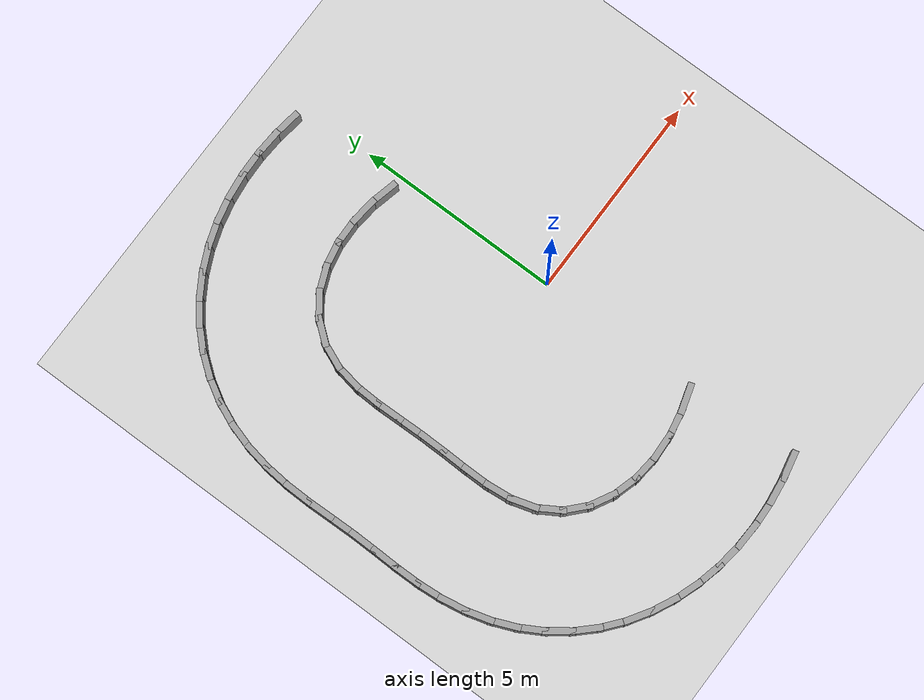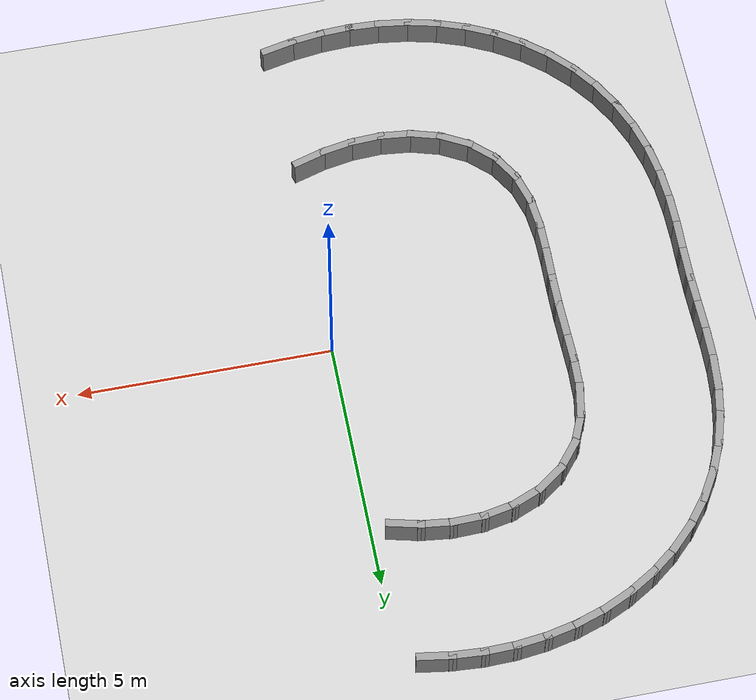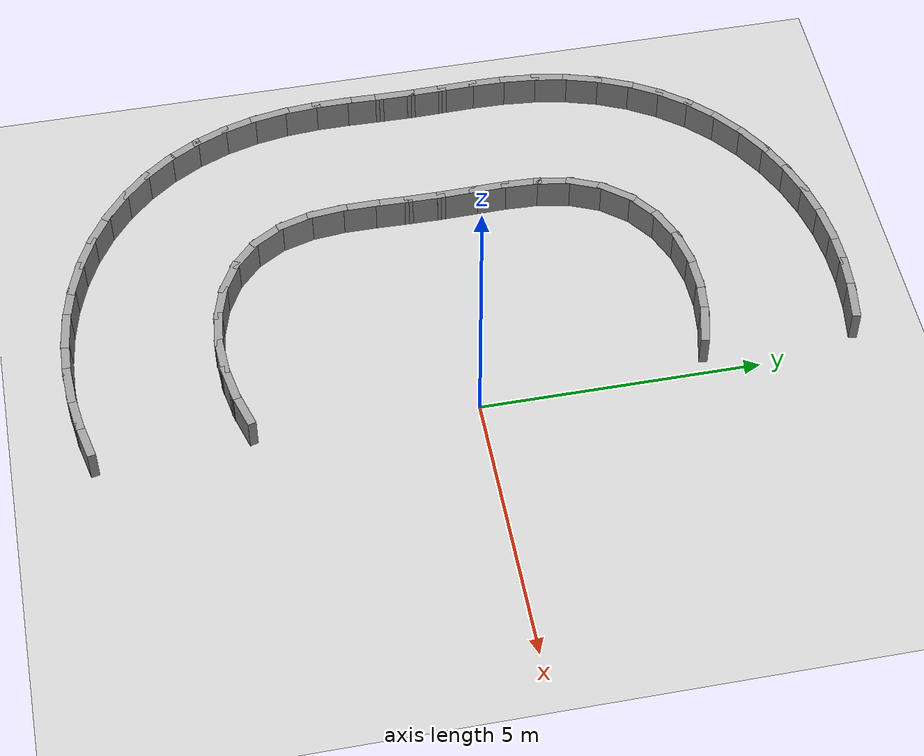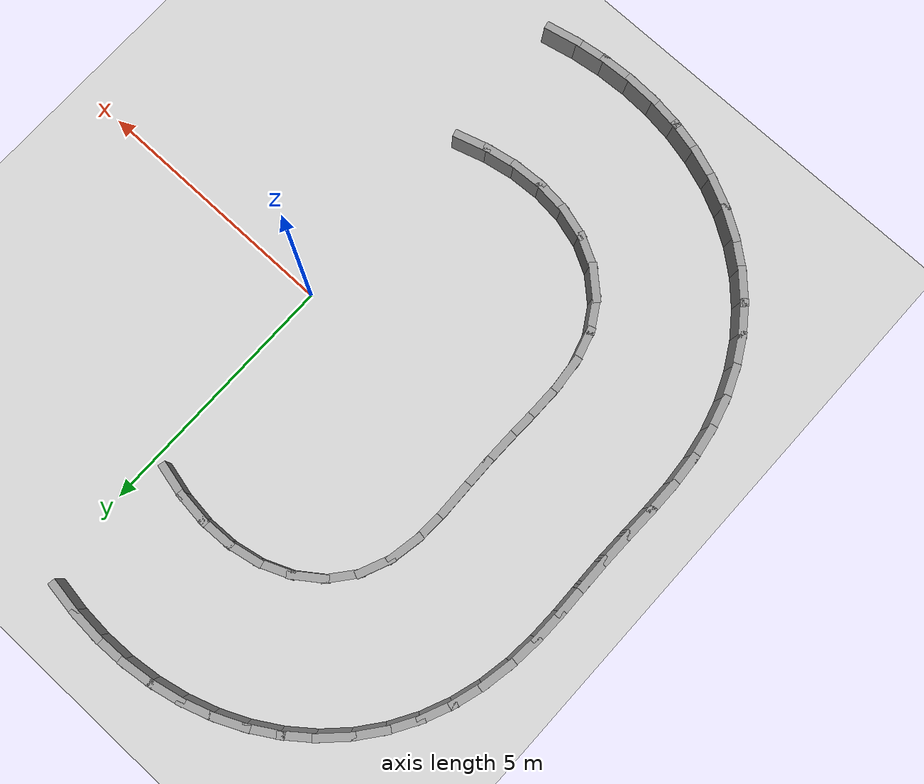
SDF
<sdf version="1.7">
 <world name="default">
  <model name="ground_plane">
   <static>1</static>
   <link name="link">
    <collision name="collision">
     <geometry><plane><normal>0 0 1</normal><size>100 100</size></plane></geometry>
     <surface><friction><ode><mu>100</mu><mu2>50</mu2></ode></friction></surface>
    </collision>
    <visual name="visual">
     <cast_shadows>0</cast_shadows>
     <geometry><plane><normal>0 0 1</normal><size>100 100</size></plane></geometry>
     <material>
      <script><uri>file://media/materials/scripts/gazebo.material</uri><name>Gazebo/Grey</name></script>
     </material>
    </visual>
   </link>
  </model>
  <model name="rand_lobed_01">
   <link name="Wall_13">
    <collision name="Wall_13_Collision">
     <geometry><box><size>0.7497 0.1500 0.6000</size></box></geometry>
     <pose>0 0 0.3000 0 -0 0</pose>
    </collision>
    <visual name="Wall_13_Visual">
     <pose>0 0 0.3000 0 -0 0</pose>
     <geometry><box><size>0.7497 0.1500 0.6000</size></box></geometry>
     <material>
      <script><uri>file://media/materials/scripts/gazebo.material</uri><name>Gazebo/Grey</name></script>
      <ambient>1 1 1 1</ambient>
     </material>
    </visual>
    <pose>-0.6195 4.1189 0 0 -0 2.90489</pose>
   </link>
   <link name="Wall_14">
    <collision name="Wall_14_Collision">
     <geometry><box><size>0.7496 0.1500 0.6000</size></box></geometry>
     <pose>0 0 0.3000 0 -0 0</pose>
    </collision>
    <visual name="Wall_14_Visual">
     <pose>0 0 0.3000 0 -0 0</pose>
     <geometry><box><size>0.7496 0.1500 0.6000</size></box></geometry>
     <material>
      <script><uri>file://media/materials/scripts/gazebo.material</uri><name>Gazebo/Grey</name></script>
      <ambient>1 1 1 1</ambient>
     </material>
    </visual>
    <pose>-1.2088 4.2235 0 0 -0 3.02691</pose>
   </link>
   <link name="Wall_15">
    <collision name="Wall_15_Collision">
     <geometry><box><size>0.7494 0.1500 0.6000</size></box></geometry>
     <pose>0 0 0.3000 0 -0 0</pose>
    </collision>
    <visual name="Wall_15_Visual">
     <pose>0 0 0.3000 0 -0 0</pose>
     <geometry><box><size>0.7494 0.1500 0.6000</size></box></geometry>
     <material>
      <script><uri>file://media/materials/scripts/gazebo.material</uri><name>Gazebo/Grey</name></script>
      <ambient>1 1 1 1</ambient>
     </material>
    </visual>
    <pose>-1.8062 4.2493 0 0 -0 -3.11310</pose>
   </link>
   <link name="Wall_16">
    <collision name="Wall_16_Collision">
     <geometry><box><size>0.7492 0.1500 0.6000</size></box></geometry>
     <pose>0 0 0.3000 0 -0 0</pose>
    </collision>
    <visual name="Wall_16_Visual">
     <pose>0 0 0.3000 0 -0 0</pose>
     <geometry><box><size>0.7492 0.1500 0.6000</size></box></geometry>
     <material>
      <script><uri>file://media/materials/scripts/gazebo.material</uri><name>Gazebo/Grey</name></script>
      <ambient>1 1 1 1</ambient>
     </material>
    </visual>
    <pose>-2.3997 4.1826 0 0 -0 -2.94653</pose>
   </link>
   <link name="Wall_17">
    <collision name="Wall_17_Collision">
     <geometry><box><size>0.7489 0.1500 0.6000</size></box></geometry>
     <pose>0 0 0.3000 0 -0 0</pose>
    </collision>
    <visual name="Wall_17_Visual">
     <pose>0 0 0.3000 0 -0 0</pose>
     <geometry><box><size>0.7489 0.1500 0.6000</size></box></geometry>
     <material>
      <script><uri>file://media/materials/scripts/gazebo.material</uri><name>Gazebo/Grey</name></script>
      <ambient>1 1 1 1</ambient>
     </material>
    </visual>
    <pose>-2.9705 4.0105 0 0 -0 -2.75075</pose>
   </link>
   <link name="Wall_18">
    <collision name="Wall_18_Collision">
     <geometry><box><size>0.7484 0.1500 0.6000</size></box></geometry>
     <pose>0 0 0.3000 0 -0 0</pose>
    </collision>
    <visual name="Wall_18_Visual">
     <pose>0 0 0.3000 0 -0 0</pose>
     <geometry><box><size>0.7484 0.1500 0.6000</size></box></geometry>
     <material>
      <script><uri>file://media/materials/scripts/gazebo.material</uri><name>Gazebo/Grey</name></script>
      <ambient>1 1 1 1</ambient>
     </material>
    </visual>
    <pose>-3.4902 3.7217 0 0 -0 -2.51799</pose>
   </link>
   <link name="Wall_19">
    <collision name="Wall_19_Collision">
     <geometry><box><size>0.7480 0.1500 0.6000</size></box></geometry>
     <pose>0 0 0.3000 0 -0 0</pose>
    </collision>
    <visual name="Wall_19_Visual">
     <pose>0 0 0.3000 0 -0 0</pose>
     <geometry><box><size>0.7480 0.1500 0.6000</size></box></geometry>
     <material>
      <script><uri>file://media/materials/scripts/gazebo.material</uri><name>Gazebo/Grey</name></script>
      <ambient>1 1 1 1</ambient>
     </material>
    </visual>
    <pose>-3.9207 3.3141 0 0 -0 -2.24880</pose>
   </link>
   <link name="Wall_20">
    <collision name="Wall_20_Collision">
     <geometry><box><size>0.7483 0.1500 0.6000</size></box></geometry>
     <pose>0 0 0.3000 0 -0 0</pose>
    </collision>
    <visual name="Wall_20_Visual">
     <pose>0 0 0.3000 0 -0 0</pose>
     <geometry><box><size>0.7483 0.1500 0.6000</size></box></geometry>
     <material>
      <script><uri>file://media/materials/scripts/gazebo.material</uri><name>Gazebo/Grey</name></script>
      <ambient>1 1 1 1</ambient>
     </material>
    </visual>
    <pose>-4.2255 2.8060 0 0 -0 -1.97364</pose>
   </link>
   <link name="Wall_21">
    <collision name="Wall_21_Collision">
     <geometry><box><size>0.7491 0.1500 0.6000</size></box></geometry>
     <pose>0 0 0.3000 0 -0 0</pose>
    </collision>
    <visual name="Wall_21_Visual">
     <pose>0 0 0.3000 0 -0 0</pose>
     <geometry><box><size>0.7491 0.1500 0.6000</size></box></geometry>
     <material>
      <script><uri>file://media/materials/scripts/gazebo.material</uri><name>Gazebo/Grey</name></script>
      <ambient>1 1 1 1</ambient>
     </material>
    </visual>
    <pose>-4.3958 2.2360 0 0 -0 -1.74892</pose>
   </link>
   <link name="Wall_22">
    <collision name="Wall_22_Collision">
     <geometry><box><size>0.7498 0.1500 0.6000</size></box></geometry>
     <pose>0 0 0.3000 0 -0 0</pose>
    </collision>
    <visual name="Wall_22_Visual">
     <pose>0 0 0.3000 0 -0 0</pose>
     <geometry><box><size>0.7498 0.1500 0.6000</size></box></geometry>
     <material>
      <script><uri>file://media/materials/scripts/gazebo.material</uri><name>Gazebo/Grey</name></script>
      <ambient>1 1 1 1</ambient>
     </material>
    </visual>
    <pose>-4.4603 1.6415 0 0 -0 -1.60867</pose>
   </link>
   <link name="Wall_23">
    <collision name="Wall_23_Collision">
     <geometry><box><size>0.7500 0.1500 0.6000</size></box></geometry>
     <pose>0 0 0.3000 0 -0 0</pose>
    </collision>
    <visual name="Wall_23_Visual">
     <pose>0 0 0.3000 0 -0 0</pose>
     <geometry><box><size>0.7500 0.1500 0.6000</size></box></geometry>
     <material>
      <script><uri>file://media/materials/scripts/gazebo.material</uri><name>Gazebo/Grey</name></script>
      <ambient>1 1 1 1</ambient>
     </material>
    </visual>
    <pose>-4.4655 1.0419 0 0 -0 -1.55020</pose>
   </link>
   <link name="Wall_24">
    <collision name="Wall_24_Collision">
     <geometry><box><size>0.7500 0.1500 0.6000</size></box></geometry>
     <pose>0 0 0.3000 0 -0 0</pose>
    </collision>
    <visual name="Wall_24_Visual">
     <pose>0 0 0.3000 0 -0 0</pose>
     <geometry><box><size>0.7500 0.1500 0.6000</size></box></geometry>
     <material>
      <script><uri>file://media/materials/scripts/gazebo.material</uri><name>Gazebo/Grey</name></script>
      <ambient>1 1 1 1</ambient>
     </material>
    </visual>
    <pose>-4.4533 0.4420 0 0 -0 -1.55099</pose>
   </link>
   <link name="Wall_25">
    <collision name="Wall_25_Collision">
     <geometry><box><size>0.7500 0.1500 0.6000</size></box></geometry>
     <pose>0 0 0.3000 0 -0 0</pose>
    </collision>
    <visual name="Wall_25_Visual">
     <pose>0 0 0.3000 0 -0 0</pose>
     <geometry><box><size>0.7500 0.1500 0.6000</size></box></geometry>
     <material>
      <script><uri>file://media/materials/scripts/gazebo.material</uri><name>Gazebo/Grey</name></script>
      <ambient>1 1 1 1</ambient>
     </material>
    </visual>
    <pose>-4.4497 -0.1579 0 0 -0 -1.57864</pose>
   </link>
   <link name="Wall_26">
    <collision name="Wall_26_Collision">
     <geometry><box><size>0.7500 0.1500 0.6000</size></box></geometry>
     <pose>0 0 0.3000 0 -0 0</pose>
    </collision>
    <visual name="Wall_26_Visual">
     <pose>0 0 0.3000 0 -0 0</pose>
     <geometry><box><size>0.7500 0.1500 0.6000</size></box></geometry>
     <material>
      <script><uri>file://media/materials/scripts/gazebo.material</uri><name>Gazebo/Grey</name></script>
      <ambient>1 1 1 1</ambient>
     </material>
    </visual>
    <pose>-4.4598 -0.7578 0 0 -0 -1.59659</pose>
   </link>
   <link name="Wall_27">
    <collision name="Wall_27_Collision">
     <geometry><box><size>0.7499 0.1500 0.6000</size></box></geometry>
     <pose>0 0 0.3000 0 -0 0</pose>
    </collision>
    <visual name="Wall_27_Visual">
     <pose>0 0 0.3000 0 -0 0</pose>
     <geometry><box><size>0.7499 0.1500 0.6000</size></box></geometry>
     <material>
      <script><uri>file://media/materials/scripts/gazebo.material</uri><name>Gazebo/Grey</name></script>
      <ambient>1 1 1 1</ambient>
     </material>
    </visual>
    <pose>-4.4673 -1.3576 0 0 -0 -1.56974</pose>
   </link>
   <link name="Wall_28">
    <collision name="Wall_28_Collision">
     <geometry><box><size>0.7495 0.1500 0.6000</size></box></geometry>
     <pose>0 0 0.3000 0 -0 0</pose>
    </collision>
    <visual name="Wall_28_Visual">
     <pose>0 0 0.3000 0 -0 0</pose>
     <geometry><box><size>0.7495 0.1500 0.6000</size></box></geometry>
     <material>
      <script><uri>file://media/materials/scripts/gazebo.material</uri><name>Gazebo/Grey</name></script>
      <ambient>1 1 1 1</ambient>
     </material>
    </visual>
    <pose>-4.4368 -1.9558 0 0 -0 -1.47012</pose>
   </link>
   <link name="Wall_29">
    <collision name="Wall_29_Collision">
     <geometry><box><size>0.7487 0.1500 0.6000</size></box></geometry>
     <pose>0 0 0.3000 0 -0 0</pose>
    </collision>
    <visual name="Wall_29_Visual">
     <pose>0 0 0.3000 0 -0 0</pose>
     <geometry><box><size>0.7487 0.1500 0.6000</size></box></geometry>
     <material>
      <script><uri>file://media/materials/scripts/gazebo.material</uri><name>Gazebo/Grey</name></script>
      <ambient>1 1 1 1</ambient>
     </material>
    </visual>
    <pose>-4.3219 -2.5411 0 0 -0 -1.28377</pose>
   </link>
   <link name="Wall_30">
    <collision name="Wall_30_Collision">
     <geometry><box><size>0.7480 0.1500 0.6000</size></box></geometry>
     <pose>0 0 0.3000 0 -0 0</pose>
    </collision>
    <visual name="Wall_30_Visual">
     <pose>0 0 0.3000 0 -0 0</pose>
     <geometry><box><size>0.7480 0.1500 0.6000</size></box></geometry>
     <material>
      <script><uri>file://media/materials/scripts/gazebo.material</uri><name>Gazebo/Grey</name></script>
      <ambient>1 1 1 1</ambient>
     </material>
    </visual>
    <pose>-4.0822 -3.0839 0 0 -0 -1.02574</pose>
   </link>
   <link name="Wall_31">
    <collision name="Wall_31_Collision">
     <geometry><box><size>0.7482 0.1500 0.6000</size></box></geometry>
     <pose>0 0 0.3000 0 -0 0</pose>
    </collision>
    <visual name="Wall_31_Visual">
     <pose>0 0 0.3000 0 -0 0</pose>
     <geometry><box><size>0.7482 0.1500 0.6000</size></box></geometry>
     <material>
      <script><uri>file://media/materials/scripts/gazebo.material</uri><name>Gazebo/Grey</name></script>
      <ambient>1 1 1 1</ambient>
     </material>
    </visual>
    <pose>-3.7078 -3.5429 0 0 -0 -0.74746</pose>
   </link>
   <link name="Wall_32">
    <collision name="Wall_32_Collision">
     <geometry><box><size>0.7487 0.1500 0.6000</size></box></geometry>
     <pose>0 0 0.3000 0 -0 0</pose>
    </collision>
    <visual name="Wall_32_Visual">
     <pose>0 0 0.3000 0 -0 0</pose>
     <geometry><box><size>0.7487 0.1500 0.6000</size></box></geometry>
     <material>
      <script><uri>file://media/materials/scripts/gazebo.material</uri><name>Gazebo/Grey</name></script>
      <ambient>1 1 1 1</ambient>
     </material>
    </visual>
    <pose>-3.2252 -3.8887 0 0 -0 -0.49611</pose>
   </link>
   <link name="Wall_33">
    <collision name="Wall_33_Collision">
     <geometry><box><size>0.7491 0.1500 0.6000</size></box></geometry>
     <pose>0 0 0.3000 0 -0 0</pose>
    </collision>
    <visual name="Wall_33_Visual">
     <pose>0 0 0.3000 0 -0 0</pose>
     <geometry><box><size>0.7491 0.1500 0.6000</size></box></geometry>
     <material>
      <script><uri>file://media/materials/scripts/gazebo.material</uri><name>Gazebo/Grey</name></script>
      <ambient>1 1 1 1</ambient>
     </material>
    </visual>
    <pose>-2.6744 -4.1150 0 0 -0 -0.28367</pose>
   </link>
   <link name="Wall_34">
    <collision name="Wall_34_Collision">
     <geometry><box><size>0.7493 0.1500 0.6000</size></box></geometry>
     <pose>0 0 0.3000 0 -0 0</pose>
    </collision>
    <visual name="Wall_34_Visual">
     <pose>0 0 0.3000 0 -0 0</pose>
     <geometry><box><size>0.7493 0.1500 0.6000</size></box></geometry>
     <material>
      <script><uri>file://media/materials/scripts/gazebo.material</uri><name>Gazebo/Grey</name></script>
      <ambient>1 1 1 1</ambient>
     </material>
    </visual>
    <pose>-2.0888 -4.2300 0 0 -0 -0.10419</pose>
   </link>
   <link name="Wall_35">
    <collision name="Wall_35_Collision">
     <geometry><box><size>0.7495 0.1500 0.6000</size></box></geometry>
     <pose>0 0 0.3000 0 -0 0</pose>
    </collision>
    <visual name="Wall_35_Visual">
     <pose>0 0 0.3000 0 -0 0</pose>
     <geometry><box><size>0.7495 0.1500 0.6000</size></box></geometry>
     <material>
      <script><uri>file://media/materials/scripts/gazebo.material</uri><name>Gazebo/Grey</name></script>
      <ambient>1 1 1 1</ambient>
     </material>
    </visual>
    <pose>-1.4914 -4.2464 0 0 -0 0.04955</pose>
   </link>
   <link name="Wall_36">
    <collision name="Wall_36_Collision">
     <geometry><box><size>0.7496 0.1500 0.6000</size></box></geometry>
     <pose>0 0 0.3000 0 -0 0</pose>
    </collision>
    <visual name="Wall_36_Visual">
     <pose>0 0 0.3000 0 -0 0</pose>
     <geometry><box><size>0.7496 0.1500 0.6000</size></box></geometry>
     <material>
      <script><uri>file://media/materials/scripts/gazebo.material</uri><name>Gazebo/Grey</name></script>
      <ambient>1 1 1 1</ambient>
     </material>
    </visual>
    <pose>-0.8971 -4.1774 0 0 -0 0.18156</pose>
   </link>
   <link name="Wall_37">
    <collision name="Wall_37_Collision">
     <geometry><box><size>0.7498 0.1500 0.6000</size></box></geometry>
     <pose>0 0 0.3000 0 -0 0</pose>
    </collision>
    <visual name="Wall_37_Visual">
     <pose>0 0 0.3000 0 -0 0</pose>
     <geometry><box><size>0.7498 0.1500 0.6000</size></box></geometry>
     <material>
      <script><uri>file://media/materials/scripts/gazebo.material</uri><name>Gazebo/Grey</name></script>
      <ambient>1 1 1 1</ambient>
     </material>
    </visual>
    <pose>-0.3150 -4.0369 0 0 -0 0.29200</pose>
   </link>
   <link name="Wall_70">
    <collision name="Wall_70_Collision">
     <geometry><box><size>0.7498 0.1500 0.6000</size></box></geometry>
     <pose>0 0 0.3000 0 -0 0</pose>
    </collision>
    <visual name="Wall_70_Visual">
     <pose>0 0 0.3000 0 -0 0</pose>
     <geometry><box><size>0.7498 0.1500 0.6000</size></box></geometry>
     <material>
      <script><uri>file://media/materials/scripts/gazebo.material</uri><name>Gazebo/Grey</name></script>
      <ambient>1 1 1 1</ambient>
     </material>
    </visual>
    <pose>-0.6574 6.8214 0 0 -0 2.99209</pose>
   </link>
   <link name="Wall_71">
    <collision name="Wall_71_Collision">
     <geometry><box><size>0.7498 0.1500 0.6000</size></box></geometry>
     <pose>0 0 0.3000 0 -0 0</pose>
    </collision>
    <visual name="Wall_71_Visual">
     <pose>0 0 0.3000 0 -0 0</pose>
     <geometry><box><size>0.7498 0.1500 0.6000</size></box></geometry>
     <material>
      <script><uri>file://media/materials/scripts/gazebo.material</uri><name>Gazebo/Grey</name></script>
      <ambient>1 1 1 1</ambient>
     </material>
    </visual>
    <pose>-1.2532 6.8857 0 0 -0 3.07615</pose>
   </link>
   <link name="Wall_72">
    <collision name="Wall_72_Collision">
     <geometry><box><size>0.7498 0.1500 0.6000</size></box></geometry>
     <pose>0 0 0.3000 0 -0 0</pose>
    </collision>
    <visual name="Wall_72_Visual">
     <pose>0 0 0.3000 0 -0 0</pose>
     <geometry><box><size>0.7498 0.1500 0.6000</size></box></geometry>
     <material>
      <script><uri>file://media/materials/scripts/gazebo.material</uri><name>Gazebo/Grey</name></script>
      <ambient>1 1 1 1</ambient>
     </material>
    </visual>
    <pose>-1.8523 6.8982 0 0 -0 -3.11799</pose>
   </link>
   <link name="Wall_73">
    <collision name="Wall_73_Collision">
     <geometry><box><size>0.7498 0.1500 0.6000</size></box></geometry>
     <pose>0 0 0.3000 0 -0 0</pose>
    </collision>
    <visual name="Wall_73_Visual">
     <pose>0 0 0.3000 0 -0 0</pose>
     <geometry><box><size>0.7498 0.1500 0.6000</size></box></geometry>
     <material>
      <script><uri>file://media/materials/scripts/gazebo.material</uri><name>Gazebo/Grey</name></script>
      <ambient>1 1 1 1</ambient>
     </material>
    </visual>
    <pose>-2.4499 6.8559 0 0 -0 -3.02398</pose>
   </link>
   <link name="Wall_74">
    <collision name="Wall_74_Collision">
     <geometry><box><size>0.7497 0.1500 0.6000</size></box></geometry>
     <pose>0 0 0.3000 0 -0 0</pose>
    </collision>
    <visual name="Wall_74_Visual">
     <pose>0 0 0.3000 0 -0 0</pose>
     <geometry><box><size>0.7497 0.1500 0.6000</size></box></geometry>
     <material>
      <script><uri>file://media/materials/scripts/gazebo.material</uri><name>Gazebo/Grey</name></script>
      <ambient>1 1 1 1</ambient>
     </material>
    </visual>
    <pose>-3.0406 6.7564 0 0 -0 -2.92520</pose>
   </link>
   <link name="Wall_75">
    <collision name="Wall_75_Collision">
     <geometry><box><size>0.7497 0.1500 0.6000</size></box></geometry>
     <pose>0 0 0.3000 0 -0 0</pose>
    </collision>
    <visual name="Wall_75_Visual">
     <pose>0 0 0.3000 0 -0 0</pose>
     <geometry><box><size>0.7497 0.1500 0.6000</size></box></geometry>
     <material>
      <script><uri>file://media/materials/scripts/gazebo.material</uri><name>Gazebo/Grey</name></script>
      <ambient>1 1 1 1</ambient>
     </material>
    </visual>
    <pose>-3.6181 6.5975 0 0 -0 -2.82122</pose>
   </link>
   <link name="Wall_76">
    <collision name="Wall_76_Collision">
     <geometry><box><size>0.7497 0.1500 0.6000</size></box></geometry>
     <pose>0 0 0.3000 0 -0 0</pose>
    </collision>
    <visual name="Wall_76_Visual">
     <pose>0 0 0.3000 0 -0 0</pose>
     <geometry><box><size>0.7497 0.1500 0.6000</size></box></geometry>
     <material>
      <script><uri>file://media/materials/scripts/gazebo.material</uri><name>Gazebo/Grey</name></script>
      <ambient>1 1 1 1</ambient>
     </material>
    </visual>
    <pose>-4.1753 6.3783 0 0 -0 -2.71214</pose>
   </link>
   <link name="Wall_77">
    <collision name="Wall_77_Collision">
     <geometry><box><size>0.7497 0.1500 0.6000</size></box></geometry>
     <pose>0 0 0.3000 0 -0 0</pose>
    </collision>
    <visual name="Wall_77_Visual">
     <pose>0 0 0.3000 0 -0 0</pose>
     <geometry><box><size>0.7497 0.1500 0.6000</size></box></geometry>
     <material>
      <script><uri>file://media/materials/scripts/gazebo.material</uri><name>Gazebo/Grey</name></script>
      <ambient>1 1 1 1</ambient>
     </material>
    </visual>
    <pose>-4.7045 6.0984 0 0 -0 -2.59807</pose>
   </link>
   <link name="Wall_78">
    <collision name="Wall_78_Collision">
     <geometry><box><size>0.7496 0.1500 0.6000</size></box></geometry>
     <pose>0 0 0.3000 0 -0 0</pose>
    </collision>
    <visual name="Wall_78_Visual">
     <pose>0 0 0.3000 0 -0 0</pose>
     <geometry><box><size>0.7496 0.1500 0.6000</size></box></geometry>
     <material>
      <script><uri>file://media/materials/scripts/gazebo.material</uri><name>Gazebo/Grey</name></script>
      <ambient>1 1 1 1</ambient>
     </material>
    </visual>
    <pose>-5.1975 5.7589 0 0 -0 -2.47909</pose>
   </link>
   <link name="Wall_79">
    <collision name="Wall_79_Collision">
     <geometry><box><size>0.7496 0.1500 0.6000</size></box></geometry>
     <pose>0 0 0.3000 0 -0 0</pose>
    </collision>
    <visual name="Wall_79_Visual">
     <pose>0 0 0.3000 0 -0 0</pose>
     <geometry><box><size>0.7496 0.1500 0.6000</size></box></geometry>
     <material>
      <script><uri>file://media/materials/scripts/gazebo.material</uri><name>Gazebo/Grey</name></script>
      <ambient>1 1 1 1</ambient>
     </material>
    </visual>
    <pose>-5.6460 5.3625 0 0 -0 -2.35641</pose>
   </link>
   <link name="Wall_80">
    <collision name="Wall_80_Collision">
     <geometry><box><size>0.7496 0.1500 0.6000</size></box></geometry>
     <pose>0 0 0.3000 0 -0 0</pose>
    </collision>
    <visual name="Wall_80_Visual">
     <pose>0 0 0.3000 0 -0 0</pose>
     <geometry><box><size>0.7496 0.1500 0.6000</size></box></geometry>
     <material>
      <script><uri>file://media/materials/scripts/gazebo.material</uri><name>Gazebo/Grey</name></script>
      <ambient>1 1 1 1</ambient>
     </material>
    </visual>
    <pose>-6.0419 4.9138 0 0 -0 -2.23117</pose>
   </link>
   <link name="Wall_81">
    <collision name="Wall_81_Collision">
     <geometry><box><size>0.7496 0.1500 0.6000</size></box></geometry>
     <pose>0 0 0.3000 0 -0 0</pose>
    </collision>
    <visual name="Wall_81_Visual">
     <pose>0 0 0.3000 0 -0 0</pose>
     <geometry><box><size>0.7496 0.1500 0.6000</size></box></geometry>
     <material>
      <script><uri>file://media/materials/scripts/gazebo.material</uri><name>Gazebo/Grey</name></script>
      <ambient>1 1 1 1</ambient>
     </material>
    </visual>
    <pose>-6.3785 4.4191 0 0 -0 -2.10532</pose>
   </link>
   <link name="Wall_82">
    <collision name="Wall_82_Collision">
     <geometry><box><size>0.7496 0.1500 0.6000</size></box></geometry>
     <pose>0 0 0.3000 0 -0 0</pose>
    </collision>
    <visual name="Wall_82_Visual">
     <pose>0 0 0.3000 0 -0 0</pose>
     <geometry><box><size>0.7496 0.1500 0.6000</size></box></geometry>
     <material>
      <script><uri>file://media/materials/scripts/gazebo.material</uri><name>Gazebo/Grey</name></script>
      <ambient>1 1 1 1</ambient>
     </material>
    </visual>
    <pose>-6.6510 3.8862 0 0 -0 -1.98152</pose>
   </link>
   <link name="Wall_83">
    <collision name="Wall_83_Collision">
     <geometry><box><size>0.7497 0.1500 0.6000</size></box></geometry>
     <pose>0 0 0.3000 0 -0 0</pose>
    </collision>
    <visual name="Wall_83_Visual">
     <pose>0 0 0.3000 0 -0 0</pose>
     <geometry><box><size>0.7497 0.1500 0.6000</size></box></geometry>
     <material>
      <script><uri>file://media/materials/scripts/gazebo.material</uri><name>Gazebo/Grey</name></script>
      <ambient>1 1 1 1</ambient>
     </material>
    </visual>
    <pose>-6.8571 3.3242 0 0 -0 -1.86300</pose>
   </link>
   <link name="Wall_84">
    <collision name="Wall_84_Collision">
     <geometry><box><size>0.7497 0.1500 0.6000</size></box></geometry>
     <pose>0 0 0.3000 0 -0 0</pose>
    </collision>
    <visual name="Wall_84_Visual">
     <pose>0 0 0.3000 0 -0 0</pose>
     <geometry><box><size>0.7497 0.1500 0.6000</size></box></geometry>
     <material>
      <script><uri>file://media/materials/scripts/gazebo.material</uri><name>Gazebo/Grey</name></script>
      <ambient>1 1 1 1</ambient>
     </material>
    </visual>
    <pose>-6.9980 2.7422 0 0 -0 -1.75385</pose>
   </link>
   <link name="Wall_85">
    <collision name="Wall_85_Collision">
     <geometry><box><size>0.7498 0.1500 0.6000</size></box></geometry>
     <pose>0 0 0.3000 0 -0 0</pose>
    </collision>
    <visual name="Wall_85_Visual">
     <pose>0 0 0.3000 0 -0 0</pose>
     <geometry><box><size>0.7498 0.1500 0.6000</size></box></geometry>
     <material>
      <script><uri>file://media/materials/scripts/gazebo.material</uri><name>Gazebo/Grey</name></script>
      <ambient>1 1 1 1</ambient>
     </material>
    </visual>
    <pose>-7.0792 2.1486 0 0 -0 -1.65945</pose>
   </link>
   <link name="Wall_86">
    <collision name="Wall_86_Collision">
     <geometry><box><size>0.7499 0.1500 0.6000</size></box></geometry>
     <pose>0 0 0.3000 0 -0 0</pose>
    </collision>
    <visual name="Wall_86_Visual">
     <pose>0 0 0.3000 0 -0 0</pose>
     <geometry><box><size>0.7499 0.1500 0.6000</size></box></geometry>
     <material>
      <script><uri>file://media/materials/scripts/gazebo.material</uri><name>Gazebo/Grey</name></script>
      <ambient>1 1 1 1</ambient>
     </material>
    </visual>
    <pose>-7.1107 1.5500 0 0 -0 -1.58741</pose>
   </link>
   <link name="Wall_87">
    <collision name="Wall_87_Collision">
     <geometry><box><size>0.7500 0.1500 0.6000</size></box></geometry>
     <pose>0 0 0.3000 0 -0 0</pose>
    </collision>
    <visual name="Wall_87_Visual">
     <pose>0 0 0.3000 0 -0 0</pose>
     <geometry><box><size>0.7500 0.1500 0.6000</size></box></geometry>
     <material>
      <script><uri>file://media/materials/scripts/gazebo.material</uri><name>Gazebo/Grey</name></script>
      <ambient>1 1 1 1</ambient>
     </material>
    </visual>
    <pose>-7.1090 0.9501 0 0 -0 -1.54858</pose>
   </link>
   <link name="Wall_88">
    <collision name="Wall_88_Collision">
     <geometry><box><size>0.7500 0.1500 0.6000</size></box></geometry>
     <pose>0 0 0.3000 0 -0 0</pose>
    </collision>
    <visual name="Wall_88_Visual">
     <pose>0 0 0.3000 0 -0 0</pose>
     <geometry><box><size>0.7500 0.1500 0.6000</size></box></geometry>
     <material>
      <script><uri>file://media/materials/scripts/gazebo.material</uri><name>Gazebo/Grey</name></script>
      <ambient>1 1 1 1</ambient>
     </material>
    </visual>
    <pose>-7.0969 0.3503 0 0 -0 -1.55278</pose>
   </link>
   <link name="Wall_89">
    <collision name="Wall_89_Collision">
     <geometry><box><size>0.7500 0.1500 0.6000</size></box></geometry>
     <pose>0 0 0.3000 0 -0 0</pose>
    </collision>
    <visual name="Wall_89_Visual">
     <pose>0 0 0.3000 0 -0 0</pose>
     <geometry><box><size>0.7500 0.1500 0.6000</size></box></geometry>
     <material>
      <script><uri>file://media/materials/scripts/gazebo.material</uri><name>Gazebo/Grey</name></script>
      <ambient>1 1 1 1</ambient>
     </material>
    </visual>
    <pose>-7.0956 -0.2496 0 0 -0 -1.58431</pose>
   </link>
   <link name="Wall_90">
    <collision name="Wall_90_Collision">
     <geometry><box><size>0.7500 0.1500 0.6000</size></box></geometry>
     <pose>0 0 0.3000 0 -0 0</pose>
    </collision>
    <visual name="Wall_90_Visual">
     <pose>0 0 0.3000 0 -0 0</pose>
     <geometry><box><size>0.7500 0.1500 0.6000</size></box></geometry>
     <material>
      <script><uri>file://media/materials/scripts/gazebo.material</uri><name>Gazebo/Grey</name></script>
      <ambient>1 1 1 1</ambient>
     </material>
    </visual>
    <pose>-7.1070 -0.8495 0 0 -0 -1.59541</pose>
   </link>
   <link name="Wall_91">
    <collision name="Wall_91_Collision">
     <geometry><box><size>0.7499 0.1500 0.6000</size></box></geometry>
     <pose>0 0 0.3000 0 -0 0</pose>
    </collision>
    <visual name="Wall_91_Visual">
     <pose>0 0 0.3000 0 -0 0</pose>
     <geometry><box><size>0.7499 0.1500 0.6000</size></box></geometry>
     <material>
      <script><uri>file://media/materials/scripts/gazebo.material</uri><name>Gazebo/Grey</name></script>
      <ambient>1 1 1 1</ambient>
     </material>
    </visual>
    <pose>-7.1122 -1.4494 0 0 -0 -1.56336</pose>
   </link>
   <link name="Wall_92">
    <collision name="Wall_92_Collision">
     <geometry><box><size>0.7498 0.1500 0.6000</size></box></geometry>
     <pose>0 0 0.3000 0 -0 0</pose>
    </collision>
    <visual name="Wall_92_Visual">
     <pose>0 0 0.3000 0 -0 0</pose>
     <geometry><box><size>0.7498 0.1500 0.6000</size></box></geometry>
     <material>
      <script><uri>file://media/materials/scripts/gazebo.material</uri><name>Gazebo/Grey</name></script>
      <ambient>1 1 1 1</ambient>
     </material>
    </visual>
    <pose>-7.0875 -2.0484 0 0 -0 -1.49602</pose>
   </link>
   <link name="Wall_93">
    <collision name="Wall_93_Collision">
     <geometry><box><size>0.7497 0.1500 0.6000</size></box></geometry>
     <pose>0 0 0.3000 0 -0 0</pose>
    </collision>
    <visual name="Wall_93_Visual">
     <pose>0 0 0.3000 0 -0 0</pose>
     <geometry><box><size>0.7497 0.1500 0.6000</size></box></geometry>
     <material>
      <script><uri>file://media/materials/scripts/gazebo.material</uri><name>Gazebo/Grey</name></script>
      <ambient>1 1 1 1</ambient>
     </material>
    </visual>
    <pose>-7.0156 -2.6432 0 0 -0 -1.40479</pose>
   </link>
   <link name="Wall_94">
    <collision name="Wall_94_Collision">
     <geometry><box><size>0.7497 0.1500 0.6000</size></box></geometry>
     <pose>0 0 0.3000 0 -0 0</pose>
    </collision>
    <visual name="Wall_94_Visual">
     <pose>0 0 0.3000 0 -0 0</pose>
     <geometry><box><size>0.7497 0.1500 0.6000</size></box></geometry>
     <material>
      <script><uri>file://media/materials/scripts/gazebo.material</uri><name>Gazebo/Grey</name></script>
      <ambient>1 1 1 1</ambient>
     </material>
    </visual>
    <pose>-6.8852 -3.2277 0 0 -0 -1.29768</pose>
   </link>
   <link name="Wall_95">
    <collision name="Wall_95_Collision">
     <geometry><box><size>0.7496 0.1500 0.6000</size></box></geometry>
     <pose>0 0 0.3000 0 -0 0</pose>
    </collision>
    <visual name="Wall_95_Visual">
     <pose>0 0 0.3000 0 -0 0</pose>
     <geometry><box><size>0.7496 0.1500 0.6000</size></box></geometry>
     <material>
      <script><uri>file://media/materials/scripts/gazebo.material</uri><name>Gazebo/Grey</name></script>
      <ambient>1 1 1 1</ambient>
     </material>
    </visual>
    <pose>-6.6902 -3.7937 0 0 -0 -1.18048</pose>
   </link>
   <link name="Wall_96">
    <collision name="Wall_96_Collision">
     <geometry><box><size>0.7496 0.1500 0.6000</size></box></geometry>
     <pose>0 0 0.3000 0 -0 0</pose>
    </collision>
    <visual name="Wall_96_Visual">
     <pose>0 0 0.3000 0 -0 0</pose>
     <geometry><box><size>0.7496 0.1500 0.6000</size></box></geometry>
     <material>
      <script><uri>file://media/materials/scripts/gazebo.material</uri><name>Gazebo/Grey</name></script>
      <ambient>1 1 1 1</ambient>
     </material>
    </visual>
    <pose>-6.4288 -4.3321 0 0 -0 -1.05722</pose>
   </link>
   <link name="Wall_97">
    <collision name="Wall_97_Collision">
     <geometry><box><size>0.7496 0.1500 0.6000</size></box></geometry>
     <pose>0 0 0.3000 0 -0 0</pose>
    </collision>
    <visual name="Wall_97_Visual">
     <pose>0 0 0.3000 0 -0 0</pose>
     <geometry><box><size>0.7496 0.1500 0.6000</size></box></geometry>
     <material>
      <script><uri>file://media/materials/scripts/gazebo.material</uri><name>Gazebo/Grey</name></script>
      <ambient>1 1 1 1</ambient>
     </material>
    </visual>
    <pose>-6.1027 -4.8338 0 0 -0 -0.93162</pose>
   </link>
   <link name="Wall_98">
    <collision name="Wall_98_Collision">
     <geometry><box><size>0.7496 0.1500 0.6000</size></box></geometry>
     <pose>0 0 0.3000 0 -0 0</pose>
    </collision>
    <visual name="Wall_98_Visual">
     <pose>0 0 0.3000 0 -0 0</pose>
     <geometry><box><size>0.7496 0.1500 0.6000</size></box></geometry>
     <material>
      <script><uri>file://media/materials/scripts/gazebo.material</uri><name>Gazebo/Grey</name></script>
      <ambient>1 1 1 1</ambient>
     </material>
    </visual>
    <pose>-5.7163 -5.2908 0 0 -0 -0.80604</pose>
   </link>
   <link name="Wall_99">
    <collision name="Wall_99_Collision">
     <geometry><box><size>0.7496 0.1500 0.6000</size></box></geometry>
     <pose>0 0 0.3000 0 -0 0</pose>
    </collision>
    <visual name="Wall_99_Visual">
     <pose>0 0 0.3000 0 -0 0</pose>
     <geometry><box><size>0.7496 0.1500 0.6000</size></box></geometry>
     <material>
      <script><uri>file://media/materials/scripts/gazebo.material</uri><name>Gazebo/Grey</name></script>
      <ambient>1 1 1 1</ambient>
     </material>
    </visual>
    <pose>-5.2761 -5.6963 0 0 -0 -0.68274</pose>
   </link>
   <link name="Wall_100">
    <collision name="Wall_100_Collision">
     <geometry><box><size>0.7497 0.1500 0.6000</size></box></geometry>
     <pose>0 0 0.3000 0 -0 0</pose>
    </collision>
    <visual name="Wall_100_Visual">
     <pose>0 0 0.3000 0 -0 0</pose>
     <geometry><box><size>0.7497 0.1500 0.6000</size></box></geometry>
     <material>
      <script><uri>file://media/materials/scripts/gazebo.material</uri><name>Gazebo/Grey</name></script>
      <ambient>1 1 1 1</ambient>
     </material>
    </visual>
    <pose>-4.7900 -6.0455 0 0 -0 -0.56328</pose>
   </link>
   <link name="Wall_101">
    <collision name="Wall_101_Collision">
     <geometry><box><size>0.7497 0.1500 0.6000</size></box></geometry>
     <pose>0 0 0.3000 0 -0 0</pose>
    </collision>
    <visual name="Wall_101_Visual">
     <pose>0 0 0.3000 0 -0 0</pose>
     <geometry><box><size>0.7497 0.1500 0.6000</size></box></geometry>
     <material>
      <script><uri>file://media/materials/scripts/gazebo.material</uri><name>Gazebo/Grey</name></script>
      <ambient>1 1 1 1</ambient>
     </material>
    </visual>
    <pose>-4.2662 -6.3355 0 0 -0 -0.44817</pose>
   </link>
   <link name="Wall_102">
    <collision name="Wall_102_Collision">
     <geometry><box><size>0.7497 0.1500 0.6000</size></box></geometry>
     <pose>0 0 0.3000 0 -0 0</pose>
    </collision>
    <visual name="Wall_102_Visual">
     <pose>0 0 0.3000 0 -0 0</pose>
     <geometry><box><size>0.7497 0.1500 0.6000</size></box></geometry>
     <material>
      <script><uri>file://media/materials/scripts/gazebo.material</uri><name>Gazebo/Grey</name></script>
      <ambient>1 1 1 1</ambient>
     </material>
    </visual>
    <pose>-3.7132 -6.5650 0 0 -0 -0.33830</pose>
   </link>
   <link name="Wall_103">
    <collision name="Wall_103_Collision">
     <geometry><box><size>0.7497 0.1500 0.6000</size></box></geometry>
     <pose>0 0 0.3000 0 -0 0</pose>
    </collision>
    <visual name="Wall_103_Visual">
     <pose>0 0 0.3000 0 -0 0</pose>
     <geometry><box><size>0.7497 0.1500 0.6000</size></box></geometry>
     <material>
      <script><uri>file://media/materials/scripts/gazebo.material</uri><name>Gazebo/Grey</name></script>
      <ambient>1 1 1 1</ambient>
     </material>
    </visual>
    <pose>-3.1386 -6.7339 0 0 -0 -0.23356</pose>
   </link>
   <link name="Wall_104">
    <collision name="Wall_104_Collision">
     <geometry><box><size>0.7498 0.1500 0.6000</size></box></geometry>
     <pose>0 0 0.3000 0 -0 0</pose>
    </collision>
    <visual name="Wall_104_Visual">
     <pose>0 0 0.3000 0 -0 0</pose>
     <geometry><box><size>0.7498 0.1500 0.6000</size></box></geometry>
     <material>
      <script><uri>file://media/materials/scripts/gazebo.material</uri><name>Gazebo/Grey</name></script>
      <ambient>1 1 1 1</ambient>
     </material>
    </visual>
    <pose>-2.5496 -6.8433 0 0 -0 -0.13376</pose>
   </link>
   <link name="Wall_105">
    <collision name="Wall_105_Collision">
     <geometry><box><size>0.7498 0.1500 0.6000</size></box></geometry>
     <pose>0 0 0.3000 0 -0 0</pose>
    </collision>
    <visual name="Wall_105_Visual">
     <pose>0 0 0.3000 0 -0 0</pose>
     <geometry><box><size>0.7498 0.1500 0.6000</size></box></geometry>
     <material>
      <script><uri>file://media/materials/scripts/gazebo.material</uri><name>Gazebo/Grey</name></script>
      <ambient>1 1 1 1</ambient>
     </material>
    </visual>
    <pose>-1.9528 -6.8950 0 0 -0 -0.03910</pose>
   </link>
   <link name="Wall_106">
    <collision name="Wall_106_Collision">
     <geometry><box><size>0.7498 0.1500 0.6000</size></box></geometry>
     <pose>0 0 0.3000 0 -0 0</pose>
    </collision>
    <visual name="Wall_106_Visual">
     <pose>0 0 0.3000 0 -0 0</pose>
     <geometry><box><size>0.7498 0.1500 0.6000</size></box></geometry>
     <material>
      <script><uri>file://media/materials/scripts/gazebo.material</uri><name>Gazebo/Grey</name></script>
      <ambient>1 1 1 1</ambient>
     </material>
    </visual>
    <pose>-1.3536 -6.8915 0 0 -0 0.05085</pose>
   </link>
   <link name="Wall_107">
    <collision name="Wall_107_Collision">
     <geometry><box><size>0.7498 0.1500 0.6000</size></box></geometry>
     <pose>0 0 0.3000 0 -0 0</pose>
    </collision>
    <visual name="Wall_107_Visual">
     <pose>0 0 0.3000 0 -0 0</pose>
     <geometry><box><size>0.7498 0.1500 0.6000</size></box></geometry>
     <material>
      <script><uri>file://media/materials/scripts/gazebo.material</uri><name>Gazebo/Grey</name></script>
      <ambient>1 1 1 1</ambient>
     </material>
    </visual>
    <pose>-0.7569 -6.8357 0 0 -0 0.13581</pose>
   </link>
   <link name="Wall_108">
    <collision name="Wall_108_Collision">
     <geometry><box><size>0.7499 0.1500 0.6000</size></box></geometry>
     <pose>0 0 0.3000 0 -0 0</pose>
    </collision>
    <visual name="Wall_108_Visual">
     <pose>0 0 0.3000 0 -0 0</pose>
     <geometry><box><size>0.7499 0.1500 0.6000</size></box></geometry>
     <material>
      <script><uri>file://media/materials/scripts/gazebo.material</uri><name>Gazebo/Grey</name></script>
      <ambient>1 1 1 1</ambient>
     </material>
    </visual>
    <pose>-0.1668 -6.7310 0 0 -0 0.21529</pose>
   </link>
   <static>1</static>
  </model>
 </world>
</sdf>
